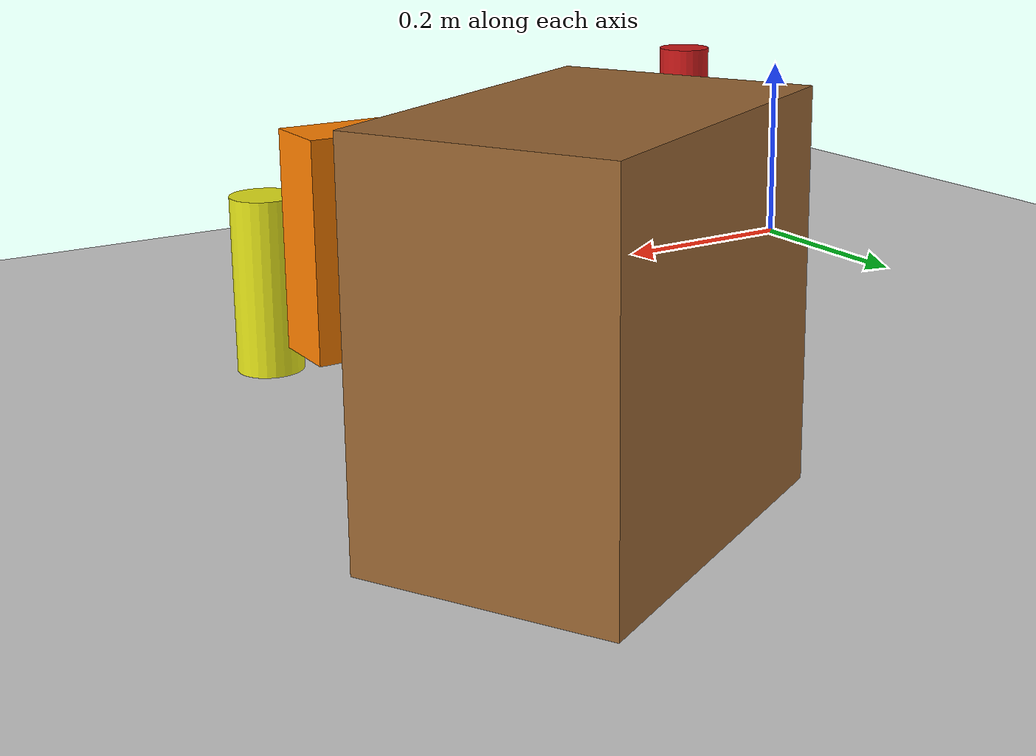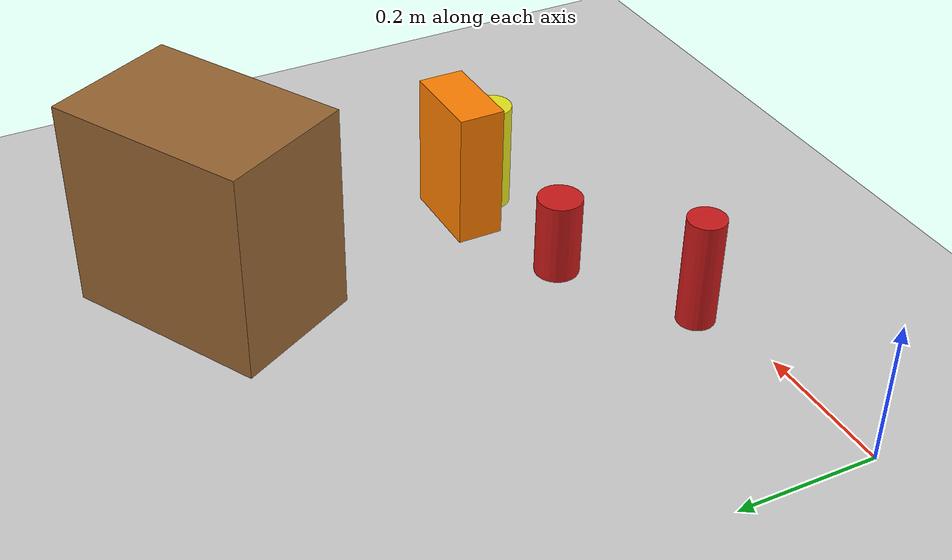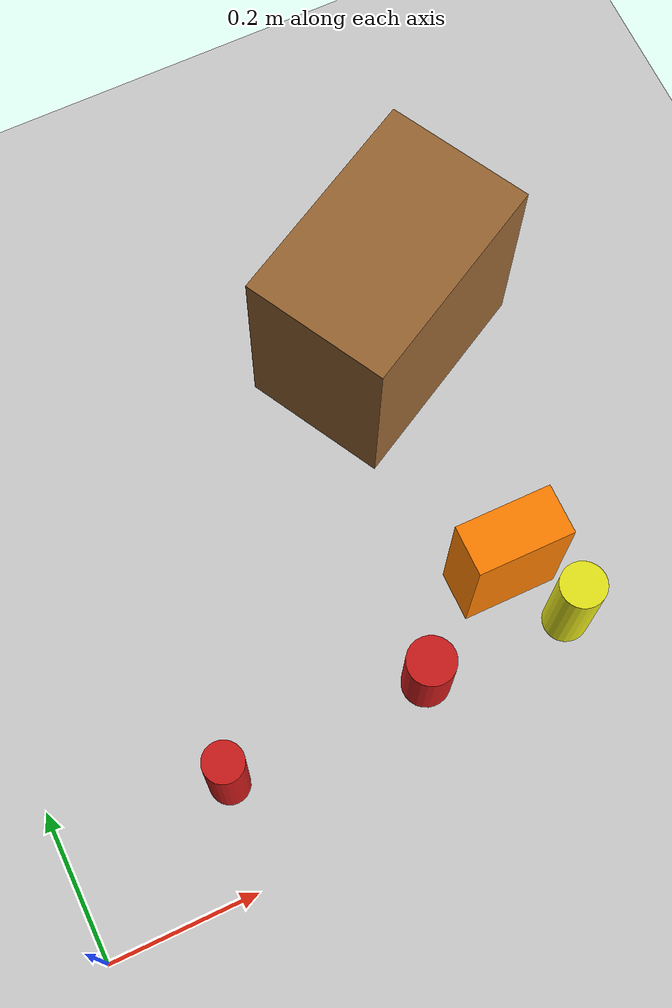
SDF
<?xml version="1.0"?>

<sdf version="1.7">
  <world name="default">

    <!-- Plugin for simulating physics -->
    <plugin filename="ignition-gazebo-physics-system" name="ignition::gazebo::systems::Physics">
      <engine>
        <filename>ignition-physics-dartsim-plugin</filename>
      </engine>
    </plugin>

    <!-- Plugin for handling user commands -->
    <plugin filename="ignition-gazebo-user-commands-system"
      name="ignition::gazebo::systems::UserCommands">
    </plugin>

    <!-- Plugin for broadcasting scene updates -->
    <plugin filename="ignition-gazebo-scene-broadcaster-system"
      name="ignition::gazebo::systems::SceneBroadcaster">
    </plugin>

    <!-- Plugin for sensor handling -->
    <plugin filename="ignition-gazebo-sensors-system" name="ignition::gazebo::systems::Sensors">
      <render_engine>ogre2</render_engine>
    </plugin>

    <!-- Plugin for IMU -->
    <plugin filename="gz-sim-imu-system" name="gz::sim::systems::Imu">
    </plugin>

    <!-- To add realistic gravity, do: 0.0 0.0 -9.8, otherwise do 0.0 0.0 0.0 -->
    <gravity>0.0 0.0 -9.8</gravity>

    <!-- Include a model of the Sun from an external URI -->
    <include>
      <uri>
        https://fuel.gazebosim.org/1.0/OpenRobotics/models/Sun
      </uri>
    </include>

    <!-- Local Ground Plane with modified friction -->
    <model name="ground_plane">
      <static>true</static>
      <link name="link">
        <collision name="collision">
          <geometry>
            <plane>
              <normal>0 0 1</normal>
            </plane>
          </geometry>
          <surface>
            <friction>
              <torsional>
                <coefficient>0.0</coefficient>
              </torsional>
            </friction>
          </surface>
        </collision>
        <visual name="visual">
          <geometry>
            <plane>
              <normal>0 0 1</normal>
              <size>100 100</size>
            </plane>
          </geometry>
          <material>
            <ambient>0.8 0.8 0.8 1</ambient>
            <diffuse>0.8 0.8 0.8 1</diffuse>
            <specular>0.8 0.8 0.8 1</specular>
          </material>
        </visual>
      </link>
    </model>

    <!-- Include the cylinder model -->
    <include>
      <uri>model://red_cylinder</uri>
      <name>red_cylinder</name>
      <pose>0.22 0.12 0.175 0 0 0</pose>
    </include>

    <!-- Include the other objects -->

    <include>
      <uri>model://mustard</uri>
      <pose>0.7 0.15 0.08 0 0 0</pose>
    </include>

    <include>
      <uri>model://cheezit_big_original</uri>
      <pose>0.64 0.23 0.13 1.571 0 0</pose>
    </include>

    <include>
      <uri>model://cardboard_box</uri>
      <pose>0.65 0.60 0.15 0 0 0.5</pose>
    </include>

    <include>
      <uri>model://coke_can</uri>
      <pose>0.5 0.15 0.061 0 0 2.3</pose>
    </include>

    <!-- Define scene properties -->
    <scene>
      <shadows>false</shadows>
    </scene>

  </world>
</sdf>

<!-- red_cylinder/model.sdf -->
<sdf version="1.7">
  <model name="red_cylinder">
    <static>false</static>
    <link name="link">
      <pose>0 0 0 0 0 0</pose>
      <inertial>
        <mass>0.1</mass>
        <inertia>
          <ixx>0.000166667</ixx>
          <iyy>0.000166667</iyy>
          <izz>0.0003125</izz>
        </inertia>
      </inertial>

      <collision name="collision">
        <geometry>
          <cylinder>
            <radius>0.025</radius>
            <length>0.15</length>
          </cylinder>
        </geometry>
        <surface>
          <friction>
            <ode>
              <mu>1.0</mu>
              <mu2>1.0</mu2>
            </ode>
          </friction>
        </surface>
      </collision>

      <visual name="visual">
        <geometry>
          <cylinder>
            <radius>0.025</radius>
            <length>0.15</length>
          </cylinder>
        </geometry>
        <material>
          <ambient>0.8 0.1 0.1 1</ambient>
          <diffuse>0.8 0.1 0.1 1</diffuse>
          <specular>0.8 0.1 0.1 1</specular>
        </material>
      </visual>
    </link>
  </model>
</sdf>

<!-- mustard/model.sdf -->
<sdf version="1.7">
  <model name="mustard">
    <static>false</static>
    <link name="link">
      <pose>0 0 0 0 0 0</pose>
      <inertial>
        <mass>0.2</mass>
        <inertia>
          <ixx>0.00083</ixx>
          <iyy>0.00083</iyy>
          <izz>0.00083</izz>
        </inertia>
      </inertial>

      <collision name="collision">
        <geometry>
          <cylinder>
            <radius>0.03</radius>
            <length>0.16</length>
          </cylinder>
        </geometry>
        <surface>
          <friction>
            <ode>
              <mu>1.0</mu>
              <mu2>1.0</mu2>
            </ode>
          </friction>
        </surface>
      </collision>

      <visual name="visual">
        <geometry>
          <cylinder>
            <radius>0.03</radius>
            <length>0.16</length>
          </cylinder>
        </geometry>
        <material>
          <ambient>0.9 0.9 0.1 1</ambient>
          <diffuse>0.9 0.9 0.1 1</diffuse>
          <specular>0.9 0.9 0.1 1</specular>
        </material>
      </visual>
    </link>
  </model>
</sdf>

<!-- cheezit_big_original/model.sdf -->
<sdf version="1.7">
  <model name="cheezit_big_original">
    <static>false</static>
    <link name="link">
      <pose>0 0 0 0 0 0</pose>
      <inertial>
        <mass>0.15</mass>
        <inertia>
          <ixx>0.0005</ixx>
          <iyy>0.0015</iyy>
          <izz>0.0015</izz>
        </inertia>
      </inertial>

      <collision name="collision">
        <geometry>
          <box>
            <size>0.125 0.195 0.065</size>
          </box>
        </geometry>
        <surface>
          <friction>
            <ode>
              <mu>1.0</mu>
              <mu2>1.0</mu2>
            </ode>
          </friction>
        </surface>
      </collision>

      <visual name="visual">
        <geometry>
          <box>
            <size>0.125 0.195 0.065</size>
          </box>
        </geometry>
        <material>
          <ambient>1.0 0.5 0.0 1</ambient>
          <diffuse>1.0 0.5 0.0 1</diffuse>
          <specular>1.0 0.5 0.0 1</specular>
        </material>
      </visual>
    </link>
  </model>
</sdf>

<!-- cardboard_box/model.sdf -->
<sdf version="1.7">
  <model name="cardboard_box">
    <static>false</static>
    <link name="link">
      <pose>0 0 0 0 0 0</pose>
      <inertial>
        <mass>0.3</mass>
        <inertia>
          <ixx>0.003</ixx>
          <iyy>0.003</iyy>
          <izz>0.003</izz>
        </inertia>
      </inertial>

      <collision name="collision">
        <geometry>
          <box>
            <size>0.3 0.2 0.3</size>
          </box>
        </geometry>
        <surface>
          <friction>
            <ode>
              <mu>0.8</mu>
              <mu2>0.8</mu2>
            </ode>
          </friction>
        </surface>
      </collision>

      <visual name="visual">
        <geometry>
          <box>
            <size>0.3 0.2 0.3</size>
          </box>
        </geometry>
        <material>
          <ambient>0.6 0.4 0.2 1</ambient>
          <diffuse>0.6 0.4 0.2 1</diffuse>
          <specular>0.6 0.4 0.2 1</specular>
        </material>
      </visual>
    </link>
  </model>
</sdf>

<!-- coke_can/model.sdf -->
<sdf version="1.7">
  <model name="coke_can">
    <static>false</static>
    <link name="link">
      <pose>0 0 0 0 0 0</pose>
      <inertial>
        <mass>0.1</mass>
        <inertia>
          <ixx>0.0003</ixx>
          <iyy>0.0003</iyy>
          <izz>0.0001</izz>
        </inertia>
      </inertial>

      <collision name="collision">
        <geometry>
          <cylinder>
            <radius>0.032</radius>
            <length>0.12</length>
          </cylinder>
        </geometry>
        <surface>
          <friction>
            <ode>
              <mu>1.0</mu>
              <mu2>1.0</mu2>
            </ode>
          </friction>
        </surface>
      </collision>

      <visual name="visual">
        <geometry>
          <cylinder>
            <radius>0.032</radius>
            <length>0.12</length>
          </cylinder>
        </geometry>
        <material>
          <ambient>0.8 0.1 0.1 1</ambient>
          <diffuse>0.8 0.1 0.1 1</diffuse>
          <specular>0.8 0.1 0.1 1</specular>
        </material>
      </visual>
    </link>
  </model>
</sdf>
